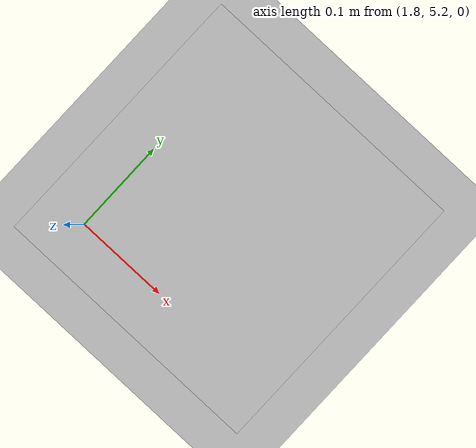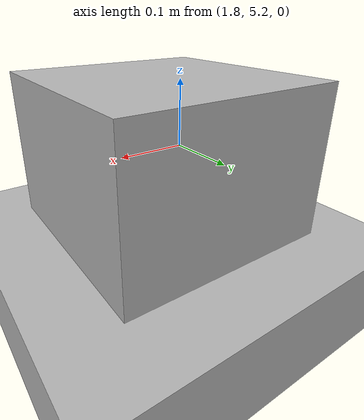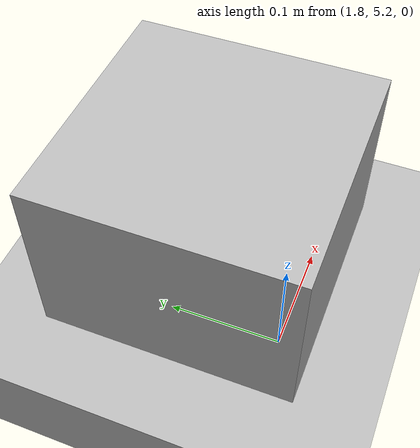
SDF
<?xml version="1.0"?>
<sdf version="1.4">
  <world name="default">
    <scene>
      <ambient>0 0 0 1</ambient>
      <shadows>0</shadows>
      <grid>0</grid>
      <background>0.7 0.7 0.7 1</background>
    </scene>

    <include>
      <uri>model://sun</uri>
    </include>

    <model name="ground">
      <pose>1 2.3 -.1 0 0 0</pose>
      <static>1</static>
      <link name="ground">
        <collision name="ground_coll">
          <geometry>
            <box>
              <size>10 10 .1</size>
            </box>
          </geometry>
          <surface>
            <contact>
              <ode/>
            </contact>
          </surface>
        </collision>
        <visual name="ground_vis">
          <geometry>
            <box>
              <size>10 10 .1</size>
            </box>
          </geometry>
          <material>
            <script>
              <uri>file://course.material</uri>
              <name>course</name>
            </script>
          </material>
        </visual>
      </link>
    </model>

    <model name='unit_box'>
      <pose>1.9 5.3 0 0 -0 0</pose>
      <link name='link'>
        <inertial>
          <mass>1</mass>
          <inertia>
            <ixx>0.01</ixx>
            <ixy>0</ixy>
            <ixz>0</ixz>
            <iyy>0.01</iyy>
            <iyz>0</iyz>
            <izz>0.01</izz>
          </inertia>
          <pose>0 0 0 0 -0 0</pose>
        </inertial>
        <collision name='collision'>
          <geometry>
            <box>
              <size>0.25 0.25 0.25</size>
            </box>
          </geometry>
          <max_contacts>10</max_contacts>
          <surface>
            <contact>
              <ode/>
            </contact>
            <bounce/>
            <friction>
              <torsional>
                <ode/>
              </torsional>
              <ode/>
            </friction>
          </surface>
        </collision>
        <visual name="visual">
          <geometry>
            <box>
              <size>0.25 0.25 0.25</size>
            </box>
          </geometry>
          <material>
            <script>
              <uri>file://stop.material</uri>
              <name>stop</name>
            </script>
          </material>
        </visual>
        <self_collide>0</self_collide>
        <enable_wind>0</enable_wind>
        <kinematic>0</kinematic>
      </link>
    </model>

    <light type="directional" name="my_light">
            <pose>0 6 1 50 30 0</pose>
            <diffuse>.9 .9 .9 1</diffuse>
            <specular>.1 .1 .1 1</specular>
            <attenuation>
                <range>20</range>
            </attenuation>
            <direction>0 0 -1</direction>
            <cast_shadows>true</cast_shadows>
    </light>

  </world>
</sdf>
